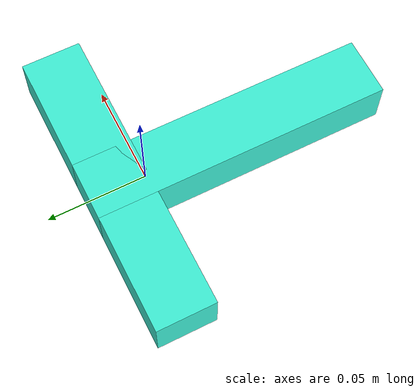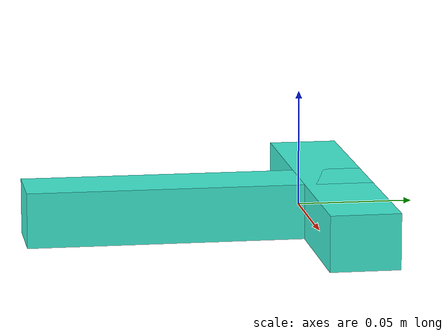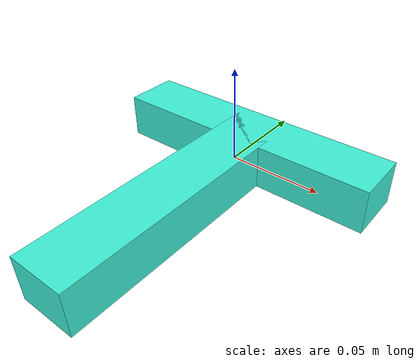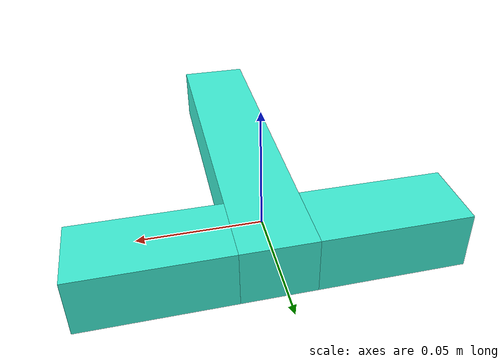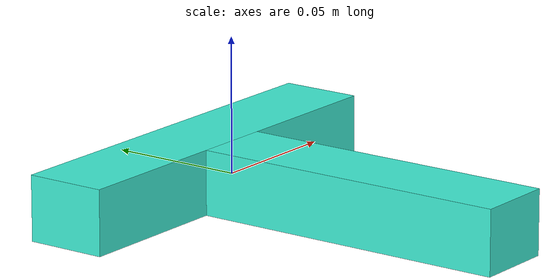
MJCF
<?xml version="1.0" encoding="utf-8"?>
<mujoco model="tbar">
  <asset>
    <mesh name="tbar_mesh" file="meshes/tbar.stl" scale="1 1 1"/>
    <material name="plastic_cyan" rgba="0.25 0.95 0.85 1" specular="0.2" shininess="0.5"/>
    <material name="plastic_red" rgba="1 0 0 0.2" specular="0.2" shininess="0.5"/>
  </asset>
  <worldbody>
    <body>
      <body name="object">
        <geom pos="0 -0.045 0" size="0.015 0.075 0.012" type="box" group="0" material="plastic_cyan"/>

        <geom pos="0 0.015 0" size="0.075 0.015 0.012" type="box" group="0" material="plastic_cyan"/>

      </body>
      <site rgba="0 0 0 0" size="0.005" pos="0 -0.04 -0.04" name="bottom_site"/>
      <site rgba="0 0 0 0" size="0.005" pos="0 -0.04 0.04" name="top_site"/>
      <site rgba="0 0 0 0" size="0.005" pos="0 0.05 0.0" name="horizontal_radius_site"/>
    </body>
  </worldbody>
</mujoco>
